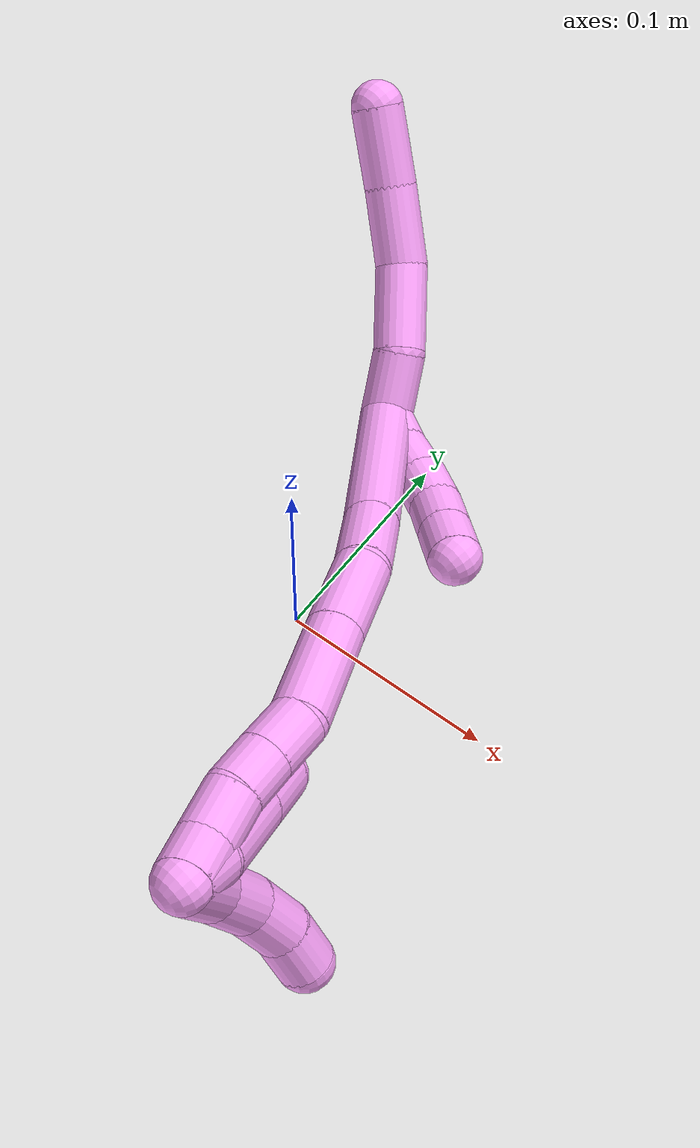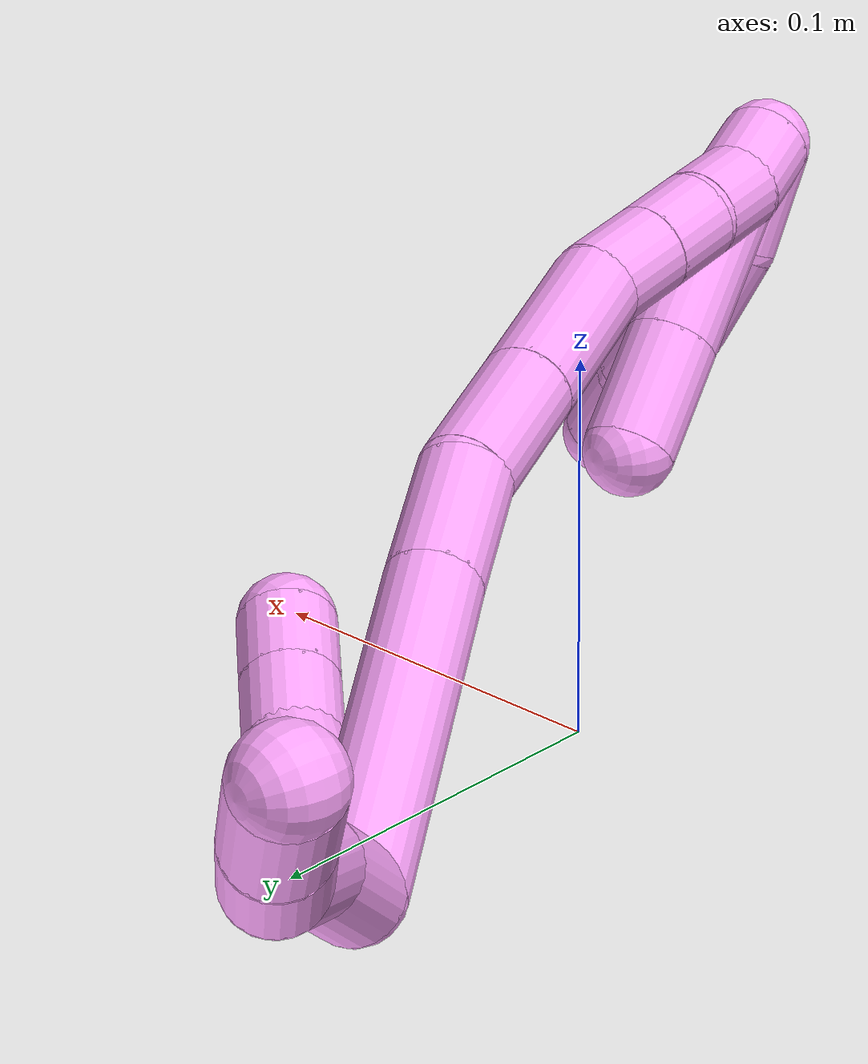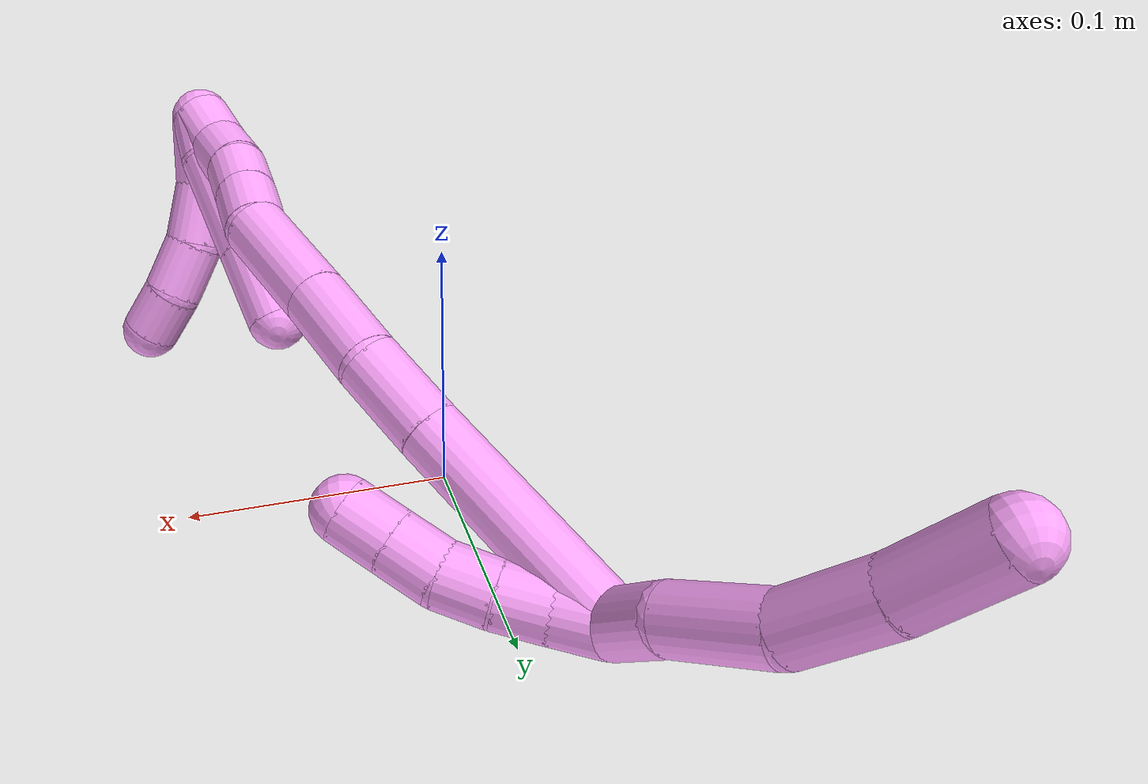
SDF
<sdf version="1.7">
 <world name="default">
  <model name="4">
   <static>0</static>
   <link name="4">
    <collision name="collision-cylinder-e_1_2_8">
     <pose>0.006704 0.00989 -0.010404 -2.38152 0.436904 -1.01448</pose>
     <geometry><cylinder><radius>0.0125</radius><length>0.031687</length></cylinder></geometry>
     <surface>
      <friction><ode><mu>1.16</mu><mu2>1.16</mu2><slip1>0</slip1><slip2>0</slip2></ode></friction>
      <contact><ode><kp>1e+06</kp><kd>1</kd><max_vel>0</max_vel><min_depth>0.001</min_depth></ode></contact>
     </surface>
    </collision>
    <visual name="visual-cylinder-e_1_2_8">
     <pose>0.006704 0.00989 -0.010404 -2.38152 0.436904 -1.01448</pose>
     <geometry><cylinder><radius>0.0125</radius><length>0.031687</length></cylinder></geometry>
     <material><ambient>1 0.65098 0.996078 1</ambient></material>
    </visual>
    <collision name="collision-cylinder-e_2_8_9">
     <pose>0.016407 0.035478 -0.034531 -2.28916 0.142887 -0.31266</pose>
     <geometry><cylinder><radius>0.0125</radius><length>0.042127</length></cylinder></geometry>
     <surface>
      <friction><ode><mu>1.16</mu><mu2>1.16</mu2><slip1>0</slip1><slip2>0</slip2></ode></friction>
      <contact><ode><kp>1e+06</kp><kd>1</kd><max_vel>0</max_vel><min_depth>0.001</min_depth></ode></contact>
     </surface>
    </collision>
    <visual name="visual-cylinder-e_2_8_9">
     <pose>0.016407 0.035478 -0.034531 -2.28916 0.142887 -0.31266</pose>
     <geometry><cylinder><radius>0.0125</radius><length>0.042127</length></cylinder></geometry>
     <material><ambient>1 0.65098 0.996078 1</ambient></material>
    </visual>
    <collision name="collision-cylinder-e_3_9_10">
     <pose>0.025893 0.067236 -0.056089 -2.02471 0.348156 -0.548748</pose>
     <geometry><cylinder><radius>0.0125</radius><length>0.038025</length></cylinder></geometry>
     <surface>
      <friction><ode><mu>1.16</mu><mu2>1.16</mu2><slip1>0</slip1><slip2>0</slip2></ode></friction>
      <contact><ode><kp>1e+06</kp><kd>1</kd><max_vel>0</max_vel><min_depth>0.001</min_depth></ode></contact>
     </surface>
    </collision>
    <visual name="visual-cylinder-e_3_9_10">
     <pose>0.025893 0.067236 -0.056089 -2.02471 0.348156 -0.548748</pose>
     <geometry><cylinder><radius>0.0125</radius><length>0.038025</length></cylinder></geometry>
     <material><ambient>1 0.65098 0.996078 1</ambient></material>
    </visual>
    <collision name="collision-cylinder-e_4_10_6">
     <pose>0.040371 0.099406 -0.070309 -1.94812 0.432142 -0.625021</pose>
     <geometry><cylinder><radius>0.0125</radius><length>0.038162</length></cylinder></geometry>
     <surface>
      <friction><ode><mu>1.16</mu><mu2>1.16</mu2><slip1>0</slip1><slip2>0</slip2></ode></friction>
      <contact><ode><kp>1e+06</kp><kd>1</kd><max_vel>0</max_vel><min_depth>0.001</min_depth></ode></contact>
     </surface>
    </collision>
    <visual name="visual-cylinder-e_4_10_6">
     <pose>0.040371 0.099406 -0.070309 -1.94812 0.432142 -0.625021</pose>
     <geometry><cylinder><radius>0.0125</radius><length>0.038162</length></cylinder></geometry>
     <material><ambient>1 0.65098 0.996078 1</ambient></material>
    </visual>
    <collision name="collision-cylinder-e_1_2_11">
     <pose>0.004075 -0.008102 0.004212 1.09139 0.419744 0.257247</pose>
     <geometry><cylinder><radius>0.0125</radius><length>0.02</length></cylinder></geometry>
     <surface>
      <friction><ode><mu>1.16</mu><mu2>1.16</mu2><slip1>0</slip1><slip2>0</slip2></ode></friction>
      <contact><ode><kp>1e+06</kp><kd>1</kd><max_vel>0</max_vel><min_depth>0.001</min_depth></ode></contact>
     </surface>
    </collision>
    <visual name="visual-cylinder-e_1_2_11">
     <pose>0.004075 -0.008102 0.004212 1.09139 0.419744 0.257247</pose>
     <geometry><cylinder><radius>0.0125</radius><length>0.02</length></cylinder></geometry>
     <material><ambient>1 0.65098 0.996078 1</ambient></material>
    </visual>
    <collision name="collision-cylinder-e_2_11_12">
     <pose>0.013312 -0.024072 0.01181 1.16438 0.542302 0.362007</pose>
     <geometry><cylinder><radius>0.0125</radius><length>0.02</length></cylinder></geometry>
     <surface>
      <friction><ode><mu>1.16</mu><mu2>1.16</mu2><slip1>0</slip1><slip2>0</slip2></ode></friction>
      <contact><ode><kp>1e+06</kp><kd>1</kd><max_vel>0</max_vel><min_depth>0.001</min_depth></ode></contact>
     </surface>
    </collision>
    <visual name="visual-cylinder-e_2_11_12">
     <pose>0.013312 -0.024072 0.01181 1.16438 0.542302 0.362007</pose>
     <geometry><cylinder><radius>0.0125</radius><length>0.02</length></cylinder></geometry>
     <material><ambient>1 0.65098 0.996078 1</ambient></material>
    </visual>
    <collision name="collision-cylinder-e_3_12_13">
     <pose>0.023745 -0.039311 0.019425 1.04998 0.555312 0.327219</pose>
     <geometry><cylinder><radius>0.0125</radius><length>0.02</length></cylinder></geometry>
     <surface>
      <friction><ode><mu>1.16</mu><mu2>1.16</mu2><slip1>0</slip1><slip2>0</slip2></ode></friction>
      <contact><ode><kp>1e+06</kp><kd>1</kd><max_vel>0</max_vel><min_depth>0.001</min_depth></ode></contact>
     </surface>
    </collision>
    <visual name="visual-cylinder-e_3_12_13">
     <pose>0.023745 -0.039311 0.019425 1.04998 0.555312 0.327219</pose>
     <geometry><cylinder><radius>0.0125</radius><length>0.02</length></cylinder></geometry>
     <material><ambient>1 0.65098 0.996078 1</ambient></material>
    </visual>
    <collision name="collision-cylinder-e_4_13_14">
     <pose>0.035358 -0.052289 0.028977 0.811272 0.686806 0.304738</pose>
     <geometry><cylinder><radius>0.0125</radius><length>0.02</length></cylinder></geometry>
     <surface>
      <friction><ode><mu>1.16</mu><mu2>1.16</mu2><slip1>0</slip1><slip2>0</slip2></ode></friction>
      <contact><ode><kp>1e+06</kp><kd>1</kd><max_vel>0</max_vel><min_depth>0.001</min_depth></ode></contact>
     </surface>
    </collision>
    <visual name="visual-cylinder-e_4_13_14">
     <pose>0.035358 -0.052289 0.028977 0.811272 0.686806 0.304738</pose>
     <geometry><cylinder><radius>0.0125</radius><length>0.02</length></cylinder></geometry>
     <material><ambient>1 0.65098 0.996078 1</ambient></material>
    </visual>
    <collision name="collision-cylinder-e_5_14_5">
     <pose>0.048075 -0.063461 0.039629 0.807184 0.691447 0.305234</pose>
     <geometry><cylinder><radius>0.0125</radius><length>0.02</length></cylinder></geometry>
     <surface>
      <friction><ode><mu>1.16</mu><mu2>1.16</mu2><slip1>0</slip1><slip2>0</slip2></ode></friction>
      <contact><ode><kp>1e+06</kp><kd>1</kd><max_vel>0</max_vel><min_depth>0.001</min_depth></ode></contact>
     </surface>
    </collision>
    <visual name="visual-cylinder-e_5_14_5">
     <pose>0.048075 -0.063461 0.039629 0.807184 0.691447 0.305234</pose>
     <geometry><cylinder><radius>0.0125</radius><length>0.02</length></cylinder></geometry>
     <material><ambient>1 0.65098 0.996078 1</ambient></material>
    </visual>
    <collision name="collision-cylinder-e_1_2_15">
     <pose>0.027793 -0.016887 0.033105 0.47169 0.64213 0.159506</pose>
     <geometry><cylinder><radius>0.0125</radius><length>0.092813</length></cylinder></geometry>
     <surface>
      <friction><ode><mu>1.16</mu><mu2>1.16</mu2><slip1>0</slip1><slip2>0</slip2></ode></friction>
      <contact><ode><kp>1e+06</kp><kd>1</kd><max_vel>0</max_vel><min_depth>0.001</min_depth></ode></contact>
     </surface>
    </collision>
    <visual name="visual-cylinder-e_1_2_15">
     <pose>0.027793 -0.016887 0.033105 0.47169 0.64213 0.159506</pose>
     <geometry><cylinder><radius>0.0125</radius><length>0.092813</length></cylinder></geometry>
     <material><ambient>1 0.65098 0.996078 1</ambient></material>
    </visual>
    <collision name="collision-cylinder-e_2_15_16">
     <pose>0.065957 -0.039708 0.078978 0.435123 0.634871 0.145002</pose>
     <geometry><cylinder><radius>0.0125</radius><length>0.034974</length></cylinder></geometry>
     <surface>
      <friction><ode><mu>1.16</mu><mu2>1.16</mu2><slip1>0</slip1><slip2>0</slip2></ode></friction>
      <contact><ode><kp>1e+06</kp><kd>1</kd><max_vel>0</max_vel><min_depth>0.001</min_depth></ode></contact>
     </surface>
    </collision>
    <visual name="visual-cylinder-e_2_15_16">
     <pose>0.065957 -0.039708 0.078978 0.435123 0.634871 0.145002</pose>
     <geometry><cylinder><radius>0.0125</radius><length>0.034974</length></cylinder></geometry>
     <material><ambient>1 0.65098 0.996078 1</ambient></material>
    </visual>
    <collision name="collision-cylinder-e_3_16_17">
     <pose>0.083627 -0.051629 0.108446 0.344146 0.390305 0.068679</pose>
     <geometry><cylinder><radius>0.0125</radius><length>0.038367</length></cylinder></geometry>
     <surface>
      <friction><ode><mu>1.16</mu><mu2>1.16</mu2><slip1>0</slip1><slip2>0</slip2></ode></friction>
      <contact><ode><kp>1e+06</kp><kd>1</kd><max_vel>0</max_vel><min_depth>0.001</min_depth></ode></contact>
     </surface>
    </collision>
    <visual name="visual-cylinder-e_3_16_17">
     <pose>0.083627 -0.051629 0.108446 0.344146 0.390305 0.068679</pose>
     <geometry><cylinder><radius>0.0125</radius><length>0.038367</length></cylinder></geometry>
     <material><ambient>1 0.65098 0.996078 1</ambient></material>
    </visual>
    <collision name="collision-cylinder-e_4_17_18">
     <pose>0.10003 -0.065615 0.146067 0.365265 0.386091 0.072175</pose>
     <geometry><cylinder><radius>0.0125</radius><length>0.048357</length></cylinder></geometry>
     <surface>
      <friction><ode><mu>1.16</mu><mu2>1.16</mu2><slip1>0</slip1><slip2>0</slip2></ode></friction>
      <contact><ode><kp>1e+06</kp><kd>1</kd><max_vel>0</max_vel><min_depth>0.001</min_depth></ode></contact>
     </surface>
    </collision>
    <visual name="visual-cylinder-e_4_17_18">
     <pose>0.10003 -0.065615 0.146067 0.365265 0.386091 0.072175</pose>
     <geometry><cylinder><radius>0.0125</radius><length>0.048357</length></cylinder></geometry>
     <material><ambient>1 0.65098 0.996078 1</ambient></material>
    </visual>
    <collision name="collision-cylinder-e_5_18_19">
     <pose>0.111615 -0.074509 0.177822 0.082288 0.224333 0.009274</pose>
     <geometry><cylinder><radius>0.0125</radius><length>0.022299</length></cylinder></geometry>
     <surface>
      <friction><ode><mu>1.16</mu><mu2>1.16</mu2><slip1>0</slip1><slip2>0</slip2></ode></friction>
      <contact><ode><kp>1e+06</kp><kd>1</kd><max_vel>0</max_vel><min_depth>0.001</min_depth></ode></contact>
     </surface>
    </collision>
    <visual name="visual-cylinder-e_5_18_19">
     <pose>0.111615 -0.074509 0.177822 0.082288 0.224333 0.009274</pose>
     <geometry><cylinder><radius>0.0125</radius><length>0.022299</length></cylinder></geometry>
     <material><ambient>1 0.65098 0.996078 1</ambient></material>
    </visual>
    <collision name="collision-cylinder-e_6_19_20">
     <pose>0.116401 -0.076406 0.198481 0.101718 0.229319 0.011724</pose>
     <geometry><cylinder><radius>0.0125</radius><length>0.020285</length></cylinder></geometry>
     <surface>
      <friction><ode><mu>1.16</mu><mu2>1.16</mu2><slip1>0</slip1><slip2>0</slip2></ode></friction>
      <contact><ode><kp>1e+06</kp><kd>1</kd><max_vel>0</max_vel><min_depth>0.001</min_depth></ode></contact>
     </surface>
    </collision>
    <visual name="visual-cylinder-e_6_19_20">
     <pose>0.116401 -0.076406 0.198481 0.101718 0.229319 0.011724</pose>
     <geometry><cylinder><radius>0.0125</radius><length>0.020285</length></cylinder></geometry>
     <material><ambient>1 0.65098 0.996078 1</ambient></material>
    </visual>
    <collision name="collision-cylinder-e_7_20_21">
     <pose>0.120621 -0.080712 0.219084 0.297403 0.168215 0.025258</pose>
     <geometry><cylinder><radius>0.0125</radius><length>0.022868</length></cylinder></geometry>
     <surface>
      <friction><ode><mu>1.16</mu><mu2>1.16</mu2><slip1>0</slip1><slip2>0</slip2></ode></friction>
      <contact><ode><kp>1e+06</kp><kd>1</kd><max_vel>0</max_vel><min_depth>0.001</min_depth></ode></contact>
     </surface>
    </collision>
    <visual name="visual-cylinder-e_7_20_21">
     <pose>0.120621 -0.080712 0.219084 0.297403 0.168215 0.025258</pose>
     <geometry><cylinder><radius>0.0125</radius><length>0.022868</length></cylinder></geometry>
     <material><ambient>1 0.65098 0.996078 1</ambient></material>
    </visual>
    <collision name="collision-cylinder-e_8_21_1">
     <pose>0.126917 -0.086302 0.238577 0.256576 0.452594 0.059383</pose>
     <geometry><cylinder><radius>0.0125</radius><length>0.020038</length></cylinder></geometry>
     <surface>
      <friction><ode><mu>1.16</mu><mu2>1.16</mu2><slip1>0</slip1><slip2>0</slip2></ode></friction>
      <contact><ode><kp>1e+06</kp><kd>1</kd><max_vel>0</max_vel><min_depth>0.001</min_depth></ode></contact>
     </surface>
    </collision>
    <visual name="visual-cylinder-e_8_21_1">
     <pose>0.126917 -0.086302 0.238577 0.256576 0.452594 0.059383</pose>
     <geometry><cylinder><radius>0.0125</radius><length>0.020038</length></cylinder></geometry>
     <material><ambient>1 0.65098 0.996078 1</ambient></material>
    </visual>
    <collision name="collision-cylinder-e_1_1_22">
     <pose>0.125253 -0.08943 0.238866 3.04197 -0.61988 -2.83275</pose>
     <geometry><cylinder><radius>0.0125</radius><length>0.020809</length></cylinder></geometry>
     <surface>
      <friction><ode><mu>1.16</mu><mu2>1.16</mu2><slip1>0</slip1><slip2>0</slip2></ode></friction>
      <contact><ode><kp>1e+06</kp><kd>1</kd><max_vel>0</max_vel><min_depth>0.001</min_depth></ode></contact>
     </surface>
    </collision>
    <visual name="visual-cylinder-e_1_1_22">
     <pose>0.125253 -0.08943 0.238866 3.04197 -0.61988 -2.83275</pose>
     <geometry><cylinder><radius>0.0125</radius><length>0.020809</length></cylinder></geometry>
     <material><ambient>1 0.65098 0.996078 1</ambient></material>
    </visual>
    <collision name="collision-cylinder-e_2_22_23">
     <pose>0.103387 -0.089677 0.214076 -3.10519 -0.768257 3.05158</pose>
     <geometry><cylinder><radius>0.0125</radius><length>0.045538</length></cylinder></geometry>
     <surface>
      <friction><ode><mu>1.16</mu><mu2>1.16</mu2><slip1>0</slip1><slip2>0</slip2></ode></friction>
      <contact><ode><kp>1e+06</kp><kd>1</kd><max_vel>0</max_vel><min_depth>0.001</min_depth></ode></contact>
     </surface>
    </collision>
    <visual name="visual-cylinder-e_2_22_23">
     <pose>0.103387 -0.089677 0.214076 -3.10519 -0.768257 3.05158</pose>
     <geometry><cylinder><radius>0.0125</radius><length>0.045538</length></cylinder></geometry>
     <material><ambient>1 0.65098 0.996078 1</ambient></material>
    </visual>
    <collision name="collision-cylinder-e_3_23_4">
     <pose>0.075853 -0.088652 0.18564 -3.10611 -0.76994 3.05407</pose>
     <geometry><cylinder><radius>0.0125</radius><length>0.033653</length></cylinder></geometry>
     <surface>
      <friction><ode><mu>1.16</mu><mu2>1.16</mu2><slip1>0</slip1><slip2>0</slip2></ode></friction>
      <contact><ode><kp>1e+06</kp><kd>1</kd><max_vel>0</max_vel><min_depth>0.001</min_depth></ode></contact>
     </surface>
    </collision>
    <visual name="visual-cylinder-e_3_23_4">
     <pose>0.075853 -0.088652 0.18564 -3.10611 -0.76994 3.05407</pose>
     <geometry><cylinder><radius>0.0125</radius><length>0.033653</length></cylinder></geometry>
     <material><ambient>1 0.65098 0.996078 1</ambient></material>
    </visual>
    <collision name="collision-cylinder-e_1_1_24">
     <pose>0.119368 -0.094268 0.241482 2.36754 -0.972874 -1.82831</pose>
     <geometry><cylinder><radius>0.0125</radius><length>0.028868</length></cylinder></geometry>
     <surface>
      <friction><ode><mu>1.16</mu><mu2>1.16</mu2><slip1>0</slip1><slip2>0</slip2></ode></friction>
      <contact><ode><kp>1e+06</kp><kd>1</kd><max_vel>0</max_vel><min_depth>0.001</min_depth></ode></contact>
     </surface>
    </collision>
    <visual name="visual-cylinder-e_1_1_24">
     <pose>0.119368 -0.094268 0.241482 2.36754 -0.972874 -1.82831</pose>
     <geometry><cylinder><radius>0.0125</radius><length>0.028868</length></cylinder></geometry>
     <material><ambient>1 0.65098 0.996078 1</ambient></material>
    </visual>
    <collision name="collision-cylinder-e_2_24_25">
     <pose>0.098518 -0.107613 0.22992 2.2146 -0.749582 -1.33361</pose>
     <geometry><cylinder><radius>0.0125</radius><length>0.026184</length></cylinder></geometry>
     <surface>
      <friction><ode><mu>1.16</mu><mu2>1.16</mu2><slip1>0</slip1><slip2>0</slip2></ode></friction>
      <contact><ode><kp>1e+06</kp><kd>1</kd><max_vel>0</max_vel><min_depth>0.001</min_depth></ode></contact>
     </surface>
    </collision>
    <visual name="visual-cylinder-e_2_24_25">
     <pose>0.098518 -0.107613 0.22992 2.2146 -0.749582 -1.33361</pose>
     <geometry><cylinder><radius>0.0125</radius><length>0.026184</length></cylinder></geometry>
     <material><ambient>1 0.65098 0.996078 1</ambient></material>
    </visual>
    <collision name="collision-cylinder-e_3_25_26">
     <pose>0.082891 -0.124398 0.22035 1.96715 -0.596035 -0.864803</pose>
     <geometry><cylinder><radius>0.0125</radius><length>0.023895</length></cylinder></geometry>
     <surface>
      <friction><ode><mu>1.16</mu><mu2>1.16</mu2><slip1>0</slip1><slip2>0</slip2></ode></friction>
      <contact><ode><kp>1e+06</kp><kd>1</kd><max_vel>0</max_vel><min_depth>0.001</min_depth></ode></contact>
     </surface>
    </collision>
    <visual name="visual-cylinder-e_3_25_26">
     <pose>0.082891 -0.124398 0.22035 1.96715 -0.596035 -0.864803</pose>
     <geometry><cylinder><radius>0.0125</radius><length>0.023895</length></cylinder></geometry>
     <material><ambient>1 0.65098 0.996078 1</ambient></material>
    </visual>
    <collision name="collision-cylinder-e_4_26_3">
     <pose>0.070538 -0.142357 0.215628 1.67288 -0.566158 -0.623419</pose>
     <geometry><cylinder><radius>0.0125</radius><length>0.021053</length></cylinder></geometry>
     <surface>
      <friction><ode><mu>1.16</mu><mu2>1.16</mu2><slip1>0</slip1><slip2>0</slip2></ode></friction>
      <contact><ode><kp>1e+06</kp><kd>1</kd><max_vel>0</max_vel><min_depth>0.001</min_depth></ode></contact>
     </surface>
    </collision>
    <visual name="visual-cylinder-e_4_26_3">
     <pose>0.070538 -0.142357 0.215628 1.67288 -0.566158 -0.623419</pose>
     <geometry><cylinder><radius>0.0125</radius><length>0.021053</length></cylinder></geometry>
     <material><ambient>1 0.65098 0.996078 1</ambient></material>
    </visual>
    <collision name="collision-sphere-3">
     <pose>0.064892 -0.151194 0.214723 0 -0 0</pose>
     <geometry><sphere><radius>0.0125</radius></sphere></geometry>
     <surface>
      <friction><ode><mu>1.16</mu><mu2>1.16</mu2><slip1>0</slip1><slip2>0</slip2></ode></friction>
      <contact><ode><kp>1e+06</kp><kd>1</kd><max_vel>0</max_vel><min_depth>0.001</min_depth></ode></contact>
     </surface>
    </collision>
    <visual name="visual-sphere-3">
     <pose>0.064892 -0.151194 0.214723 0 -0 0</pose>
     <geometry><sphere><radius>0.0125</radius></sphere></geometry>
     <material><ambient>1 0.65098 0.996078 1</ambient></material>
    </visual>
    <collision name="collision-sphere-26">
     <pose>0.076184 -0.133519 0.216533 0 -0 0</pose>
     <geometry><sphere><radius>0.0125</radius></sphere></geometry>
     <surface>
      <friction><ode><mu>1.16</mu><mu2>1.16</mu2><slip1>0</slip1><slip2>0</slip2></ode></friction>
      <contact><ode><kp>1e+06</kp><kd>1</kd><max_vel>0</max_vel><min_depth>0.001</min_depth></ode></contact>
     </surface>
    </collision>
    <visual name="visual-sphere-26">
     <pose>0.076184 -0.133519 0.216533 0 -0 0</pose>
     <geometry><sphere><radius>0.0125</radius></sphere></geometry>
     <material><ambient>1 0.65098 0.996078 1</ambient></material>
    </visual>
    <collision name="collision-sphere-25">
     <pose>0.089598 -0.115278 0.224168 0 -0 0</pose>
     <geometry><sphere><radius>0.0125</radius></sphere></geometry>
     <surface>
      <friction><ode><mu>1.16</mu><mu2>1.16</mu2><slip1>0</slip1><slip2>0</slip2></ode></friction>
      <contact><ode><kp>1e+06</kp><kd>1</kd><max_vel>0</max_vel><min_depth>0.001</min_depth></ode></contact>
     </surface>
    </collision>
    <visual name="visual-sphere-25">
     <pose>0.089598 -0.115278 0.224168 0 -0 0</pose>
     <geometry><sphere><radius>0.0125</radius></sphere></geometry>
     <material><ambient>1 0.65098 0.996078 1</ambient></material>
    </visual>
    <collision name="collision-sphere-24">
     <pose>0.107438 -0.099948 0.235672 0 -0 0</pose>
     <geometry><sphere><radius>0.0125</radius></sphere></geometry>
     <surface>
      <friction><ode><mu>1.16</mu><mu2>1.16</mu2><slip1>0</slip1><slip2>0</slip2></ode></friction>
      <contact><ode><kp>1e+06</kp><kd>1</kd><max_vel>0</max_vel><min_depth>0.001</min_depth></ode></contact>
     </surface>
    </collision>
    <visual name="visual-sphere-24">
     <pose>0.107438 -0.099948 0.235672 0 -0 0</pose>
     <geometry><sphere><radius>0.0125</radius></sphere></geometry>
     <material><ambient>1 0.65098 0.996078 1</ambient></material>
    </visual>
    <collision name="collision-sphere-4">
     <pose>0.06414 -0.088224 0.173567 0 -0 0</pose>
     <geometry><sphere><radius>0.0125</radius></sphere></geometry>
     <surface>
      <friction><ode><mu>1.16</mu><mu2>1.16</mu2><slip1>0</slip1><slip2>0</slip2></ode></friction>
      <contact><ode><kp>1e+06</kp><kd>1</kd><max_vel>0</max_vel><min_depth>0.001</min_depth></ode></contact>
     </surface>
    </collision>
    <visual name="visual-sphere-4">
     <pose>0.06414 -0.088224 0.173567 0 -0 0</pose>
     <geometry><sphere><radius>0.0125</radius></sphere></geometry>
     <material><ambient>1 0.65098 0.996078 1</ambient></material>
    </visual>
    <collision name="collision-sphere-23">
     <pose>0.087565 -0.089081 0.197713 0 -0 0</pose>
     <geometry><sphere><radius>0.0125</radius></sphere></geometry>
     <surface>
      <friction><ode><mu>1.16</mu><mu2>1.16</mu2><slip1>0</slip1><slip2>0</slip2></ode></friction>
      <contact><ode><kp>1e+06</kp><kd>1</kd><max_vel>0</max_vel><min_depth>0.001</min_depth></ode></contact>
     </surface>
    </collision>
    <visual name="visual-sphere-23">
     <pose>0.087565 -0.089081 0.197713 0 -0 0</pose>
     <geometry><sphere><radius>0.0125</radius></sphere></geometry>
     <material><ambient>1 0.65098 0.996078 1</ambient></material>
    </visual>
    <collision name="collision-sphere-22">
     <pose>0.119209 -0.090273 0.230439 0 -0 0</pose>
     <geometry><sphere><radius>0.0125</radius></sphere></geometry>
     <surface>
      <friction><ode><mu>1.16</mu><mu2>1.16</mu2><slip1>0</slip1><slip2>0</slip2></ode></friction>
      <contact><ode><kp>1e+06</kp><kd>1</kd><max_vel>0</max_vel><min_depth>0.001</min_depth></ode></contact>
     </surface>
    </collision>
    <visual name="visual-sphere-22">
     <pose>0.119209 -0.090273 0.230439 0 -0 0</pose>
     <geometry><sphere><radius>0.0125</radius></sphere></geometry>
     <material><ambient>1 0.65098 0.996078 1</ambient></material>
    </visual>
    <collision name="collision-sphere-1">
     <pose>0.131298 -0.088588 0.247293 0 -0 0</pose>
     <geometry><sphere><radius>0.0125</radius></sphere></geometry>
     <surface>
      <friction><ode><mu>1.16</mu><mu2>1.16</mu2><slip1>0</slip1><slip2>0</slip2></ode></friction>
      <contact><ode><kp>1e+06</kp><kd>1</kd><max_vel>0</max_vel><min_depth>0.001</min_depth></ode></contact>
     </surface>
    </collision>
    <visual name="visual-sphere-1">
     <pose>0.131298 -0.088588 0.247293 0 -0 0</pose>
     <geometry><sphere><radius>0.0125</radius></sphere></geometry>
     <material><ambient>1 0.65098 0.996078 1</ambient></material>
    </visual>
    <collision name="collision-sphere-21">
     <pose>0.122535 -0.084015 0.229862 0 -0 0</pose>
     <geometry><sphere><radius>0.0125</radius></sphere></geometry>
     <surface>
      <friction><ode><mu>1.16</mu><mu2>1.16</mu2><slip1>0</slip1><slip2>0</slip2></ode></friction>
      <contact><ode><kp>1e+06</kp><kd>1</kd><max_vel>0</max_vel><min_depth>0.001</min_depth></ode></contact>
     </surface>
    </collision>
    <visual name="visual-sphere-21">
     <pose>0.122535 -0.084015 0.229862 0 -0 0</pose>
     <geometry><sphere><radius>0.0125</radius></sphere></geometry>
     <material><ambient>1 0.65098 0.996078 1</ambient></material>
    </visual>
    <collision name="collision-sphere-11">
     <pose>0.008151 -0.016205 0.008424 0 -0 0</pose>
     <geometry><sphere><radius>0.0125</radius></sphere></geometry>
     <surface>
      <friction><ode><mu>1.16</mu><mu2>1.16</mu2><slip1>0</slip1><slip2>0</slip2></ode></friction>
      <contact><ode><kp>1e+06</kp><kd>1</kd><max_vel>0</max_vel><min_depth>0.001</min_depth></ode></contact>
     </surface>
    </collision>
    <visual name="visual-sphere-11">
     <pose>0.008151 -0.016205 0.008424 0 -0 0</pose>
     <geometry><sphere><radius>0.0125</radius></sphere></geometry>
     <material><ambient>1 0.65098 0.996078 1</ambient></material>
    </visual>
    <collision name="collision-sphere-6">
     <pose>0.048362 0.115514 -0.076693 0 -0 0</pose>
     <geometry><sphere><radius>0.0125</radius></sphere></geometry>
     <surface>
      <friction><ode><mu>1.16</mu><mu2>1.16</mu2><slip1>0</slip1><slip2>0</slip2></ode></friction>
      <contact><ode><kp>1e+06</kp><kd>1</kd><max_vel>0</max_vel><min_depth>0.001</min_depth></ode></contact>
     </surface>
    </collision>
    <visual name="visual-sphere-6">
     <pose>0.048362 0.115514 -0.076693 0 -0 0</pose>
     <geometry><sphere><radius>0.0125</radius></sphere></geometry>
     <material><ambient>1 0.65098 0.996078 1</ambient></material>
    </visual>
    <collision name="collision-sphere-10">
     <pose>0.03238 0.083298 -0.063925 0 -0 0</pose>
     <geometry><sphere><radius>0.0125</radius></sphere></geometry>
     <surface>
      <friction><ode><mu>1.16</mu><mu2>1.16</mu2><slip1>0</slip1><slip2>0</slip2></ode></friction>
      <contact><ode><kp>1e+06</kp><kd>1</kd><max_vel>0</max_vel><min_depth>0.001</min_depth></ode></contact>
     </surface>
    </collision>
    <visual name="visual-sphere-10">
     <pose>0.03238 0.083298 -0.063925 0 -0 0</pose>
     <geometry><sphere><radius>0.0125</radius></sphere></geometry>
     <material><ambient>1 0.65098 0.996078 1</ambient></material>
    </visual>
    <collision name="collision-sphere-9">
     <pose>0.019407 0.051174 -0.048252 0 -0 0</pose>
     <geometry><sphere><radius>0.0125</radius></sphere></geometry>
     <surface>
      <friction><ode><mu>1.16</mu><mu2>1.16</mu2><slip1>0</slip1><slip2>0</slip2></ode></friction>
      <contact><ode><kp>1e+06</kp><kd>1</kd><max_vel>0</max_vel><min_depth>0.001</min_depth></ode></contact>
     </surface>
    </collision>
    <visual name="visual-sphere-9">
     <pose>0.019407 0.051174 -0.048252 0 -0 0</pose>
     <geometry><sphere><radius>0.0125</radius></sphere></geometry>
     <material><ambient>1 0.65098 0.996078 1</ambient></material>
    </visual>
    <collision name="collision-sphere-2">
     <geometry><sphere><radius>0.0125</radius></sphere></geometry>
     <surface>
      <friction><ode><mu>1.16</mu><mu2>1.16</mu2><slip1>0</slip1><slip2>0</slip2></ode></friction>
      <contact><ode><kp>1e+06</kp><kd>1</kd><max_vel>0</max_vel><min_depth>0.001</min_depth></ode></contact>
     </surface>
    </collision>
    <visual name="visual-sphere-2">
     <geometry><sphere><radius>0.0125</radius></sphere></geometry>
     <material><ambient>1 0.65098 0.996078 1</ambient></material>
    </visual>
    <collision name="collision-sphere-19">
     <pose>0.114096 -0.075403 0.188655 0 -0 0</pose>
     <geometry><sphere><radius>0.0125</radius></sphere></geometry>
     <surface>
      <friction><ode><mu>1.16</mu><mu2>1.16</mu2><slip1>0</slip1><slip2>0</slip2></ode></friction>
      <contact><ode><kp>1e+06</kp><kd>1</kd><max_vel>0</max_vel><min_depth>0.001</min_depth></ode></contact>
     </surface>
    </collision>
    <visual name="visual-sphere-19">
     <pose>0.114096 -0.075403 0.188655 0 -0 0</pose>
     <geometry><sphere><radius>0.0125</radius></sphere></geometry>
     <material><ambient>1 0.65098 0.996078 1</ambient></material>
    </visual>
    <collision name="collision-sphere-8">
     <pose>0.013408 0.019781 -0.020809 0 -0 0</pose>
     <geometry><sphere><radius>0.0125</radius></sphere></geometry>
     <surface>
      <friction><ode><mu>1.16</mu><mu2>1.16</mu2><slip1>0</slip1><slip2>0</slip2></ode></friction>
      <contact><ode><kp>1e+06</kp><kd>1</kd><max_vel>0</max_vel><min_depth>0.001</min_depth></ode></contact>
     </surface>
    </collision>
    <visual name="visual-sphere-8">
     <pose>0.013408 0.019781 -0.020809 0 -0 0</pose>
     <geometry><sphere><radius>0.0125</radius></sphere></geometry>
     <material><ambient>1 0.65098 0.996078 1</ambient></material>
    </visual>
    <collision name="collision-sphere-12">
     <pose>0.018473 -0.03194 0.015196 0 -0 0</pose>
     <geometry><sphere><radius>0.0125</radius></sphere></geometry>
     <surface>
      <friction><ode><mu>1.16</mu><mu2>1.16</mu2><slip1>0</slip1><slip2>0</slip2></ode></friction>
      <contact><ode><kp>1e+06</kp><kd>1</kd><max_vel>0</max_vel><min_depth>0.001</min_depth></ode></contact>
     </surface>
    </collision>
    <visual name="visual-sphere-12">
     <pose>0.018473 -0.03194 0.015196 0 -0 0</pose>
     <geometry><sphere><radius>0.0125</radius></sphere></geometry>
     <material><ambient>1 0.65098 0.996078 1</ambient></material>
    </visual>
    <collision name="collision-sphere-13">
     <pose>0.029017 -0.046681 0.023653 0 -0 0</pose>
     <geometry><sphere><radius>0.0125</radius></sphere></geometry>
     <surface>
      <friction><ode><mu>1.16</mu><mu2>1.16</mu2><slip1>0</slip1><slip2>0</slip2></ode></friction>
      <contact><ode><kp>1e+06</kp><kd>1</kd><max_vel>0</max_vel><min_depth>0.001</min_depth></ode></contact>
     </surface>
    </collision>
    <visual name="visual-sphere-13">
     <pose>0.029017 -0.046681 0.023653 0 -0 0</pose>
     <geometry><sphere><radius>0.0125</radius></sphere></geometry>
     <material><ambient>1 0.65098 0.996078 1</ambient></material>
    </visual>
    <collision name="collision-sphere-14">
     <pose>0.041698 -0.057896 0.034302 0 -0 0</pose>
     <geometry><sphere><radius>0.0125</radius></sphere></geometry>
     <surface>
      <friction><ode><mu>1.16</mu><mu2>1.16</mu2><slip1>0</slip1><slip2>0</slip2></ode></friction>
      <contact><ode><kp>1e+06</kp><kd>1</kd><max_vel>0</max_vel><min_depth>0.001</min_depth></ode></contact>
     </surface>
    </collision>
    <visual name="visual-sphere-14">
     <pose>0.041698 -0.057896 0.034302 0 -0 0</pose>
     <geometry><sphere><radius>0.0125</radius></sphere></geometry>
     <material><ambient>1 0.65098 0.996078 1</ambient></material>
    </visual>
    <collision name="collision-sphere-5">
     <pose>0.054451 -0.069025 0.044956 0 -0 0</pose>
     <geometry><sphere><radius>0.0125</radius></sphere></geometry>
     <surface>
      <friction><ode><mu>1.16</mu><mu2>1.16</mu2><slip1>0</slip1><slip2>0</slip2></ode></friction>
      <contact><ode><kp>1e+06</kp><kd>1</kd><max_vel>0</max_vel><min_depth>0.001</min_depth></ode></contact>
     </surface>
    </collision>
    <visual name="visual-sphere-5">
     <pose>0.054451 -0.069025 0.044956 0 -0 0</pose>
     <geometry><sphere><radius>0.0125</radius></sphere></geometry>
     <material><ambient>1 0.65098 0.996078 1</ambient></material>
    </visual>
    <collision name="collision-sphere-15">
     <pose>0.055586 -0.033773 0.06621 0 -0 0</pose>
     <geometry><sphere><radius>0.0125</radius></sphere></geometry>
     <surface>
      <friction><ode><mu>1.16</mu><mu2>1.16</mu2><slip1>0</slip1><slip2>0</slip2></ode></friction>
      <contact><ode><kp>1e+06</kp><kd>1</kd><max_vel>0</max_vel><min_depth>0.001</min_depth></ode></contact>
     </surface>
    </collision>
    <visual name="visual-sphere-15">
     <pose>0.055586 -0.033773 0.06621 0 -0 0</pose>
     <geometry><sphere><radius>0.0125</radius></sphere></geometry>
     <material><ambient>1 0.65098 0.996078 1</ambient></material>
    </visual>
    <collision name="collision-sphere-16">
     <pose>0.076328 -0.045643 0.091745 0 -0 0</pose>
     <geometry><sphere><radius>0.0125</radius></sphere></geometry>
     <surface>
      <friction><ode><mu>1.16</mu><mu2>1.16</mu2><slip1>0</slip1><slip2>0</slip2></ode></friction>
      <contact><ode><kp>1e+06</kp><kd>1</kd><max_vel>0</max_vel><min_depth>0.001</min_depth></ode></contact>
     </surface>
    </collision>
    <visual name="visual-sphere-16">
     <pose>0.076328 -0.045643 0.091745 0 -0 0</pose>
     <geometry><sphere><radius>0.0125</radius></sphere></geometry>
     <material><ambient>1 0.65098 0.996078 1</ambient></material>
    </visual>
    <collision name="collision-sphere-17">
     <pose>0.090925 -0.057614 0.125146 0 -0 0</pose>
     <geometry><sphere><radius>0.0125</radius></sphere></geometry>
     <surface>
      <friction><ode><mu>1.16</mu><mu2>1.16</mu2><slip1>0</slip1><slip2>0</slip2></ode></friction>
      <contact><ode><kp>1e+06</kp><kd>1</kd><max_vel>0</max_vel><min_depth>0.001</min_depth></ode></contact>
     </surface>
    </collision>
    <visual name="visual-sphere-17">
     <pose>0.090925 -0.057614 0.125146 0 -0 0</pose>
     <geometry><sphere><radius>0.0125</radius></sphere></geometry>
     <material><ambient>1 0.65098 0.996078 1</ambient></material>
    </visual>
    <collision name="collision-sphere-18">
     <pose>0.109135 -0.073616 0.166988 0 -0 0</pose>
     <geometry><sphere><radius>0.0125</radius></sphere></geometry>
     <surface>
      <friction><ode><mu>1.16</mu><mu2>1.16</mu2><slip1>0</slip1><slip2>0</slip2></ode></friction>
      <contact><ode><kp>1e+06</kp><kd>1</kd><max_vel>0</max_vel><min_depth>0.001</min_depth></ode></contact>
     </surface>
    </collision>
    <visual name="visual-sphere-18">
     <pose>0.109135 -0.073616 0.166988 0 -0 0</pose>
     <geometry><sphere><radius>0.0125</radius></sphere></geometry>
     <material><ambient>1 0.65098 0.996078 1</ambient></material>
    </visual>
    <collision name="collision-sphere-20">
     <pose>0.118707 -0.077409 0.208306 0 -0 0</pose>
     <geometry><sphere><radius>0.0125</radius></sphere></geometry>
     <surface>
      <friction><ode><mu>1.16</mu><mu2>1.16</mu2><slip1>0</slip1><slip2>0</slip2></ode></friction>
      <contact><ode><kp>1e+06</kp><kd>1</kd><max_vel>0</max_vel><min_depth>0.001</min_depth></ode></contact>
     </surface>
    </collision>
    <visual name="visual-sphere-20">
     <pose>0.118707 -0.077409 0.208306 0 -0 0</pose>
     <geometry><sphere><radius>0.0125</radius></sphere></geometry>
     <material><ambient>1 0.65098 0.996078 1</ambient></material>
    </visual>
    <inertial>
     <pose>0.064483 -0.041226 0.098779 0 -0 0</pose>
     <mass>0.75</mass>
     <inertia>
      <ixx>0.000101</ixx>
      <ixy>0</ixy>
      <ixz>0</ixz>
      <iyy>9.8e-05</iyy>
      <iyz>0</iyz>
      <izz>-1.3e-05</izz>
     </inertia>
    </inertial>
   </link>
   <pose>-0.02998 0.108704 0.011488 1.528 -1.14181 -0.099954</pose>
  </model>
 </world>
</sdf>
